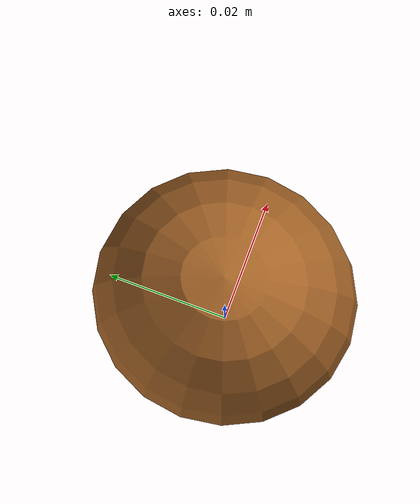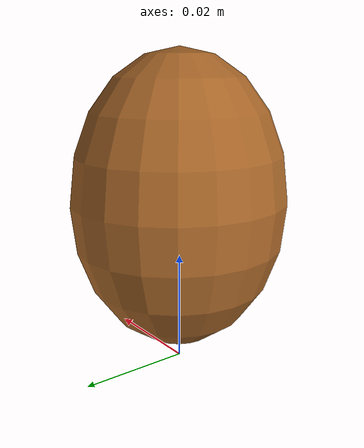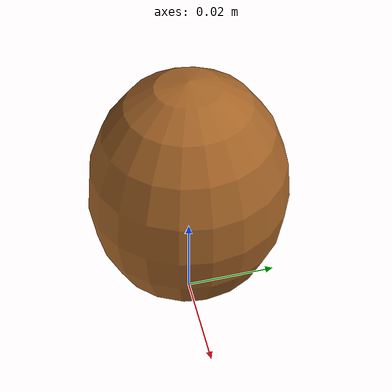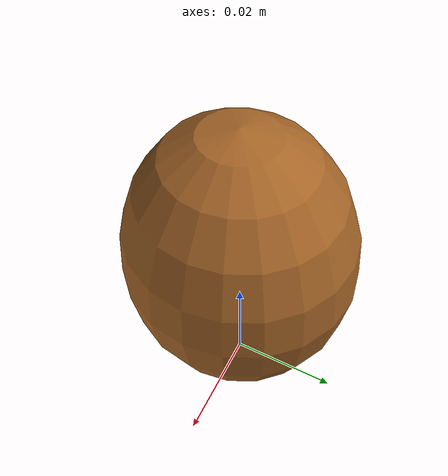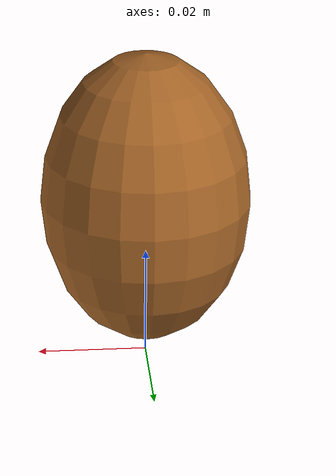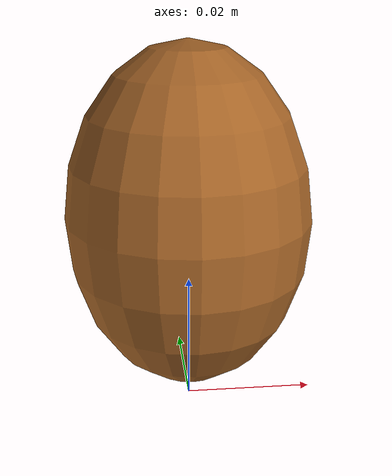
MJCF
<mujoco model="egg-visual">
  <asset>
    <material name="egg_shell" metallic="0" roughness="0.51" rgba="0.647059 0.392157 0.152941 1"/>
  </asset>
  <worldbody>
    <body name="egg" pos="0 0 0.0308">
      <freejoint/>
      <inertial
        pos="0.0015 -0.0008 0.0025"
        mass="0.06"
        diaginertia="0.0000145 0.0000162 0.0000088"/>
      <geom
        pos="0 0 0"
        type="ellipsoid"
        size="0.019 0.020 0.027"
        material="egg_shell"
        conaffinity="0"
        contype="0"
        group="1"/>
      <geom
        pos="0.001 0 -0.004"
        type="ellipsoid"
        size="0.0215 0.0168 0.023"
        conaffinity="1"
        contype="1"
        group="3"
        condim="6"
        friction="0.8 0.015 0.00005"
        solimp="0.9 0.999 0.0002"
        solref="0.001 0.8"
        margin="0.001"/>
      <geom
        pos="-0.0008 0 0.012"
        type="ellipsoid"
        size="0.0175 0.014 0.016"
        conaffinity="1"
        contype="1"
        group="3"
        condim="6"
        friction="0.8 0.015 0.00005"
        solimp="0.9 0.999 0.0002"
        solref="0.001 0.8"
        margin="0.001"/>
    </body>
  </worldbody>
  <keyframe>
    <key name="upright" qpos="0 0 0.0308 0.99904822 0.04361939 0 0"/>
  </keyframe>
</mujoco>
